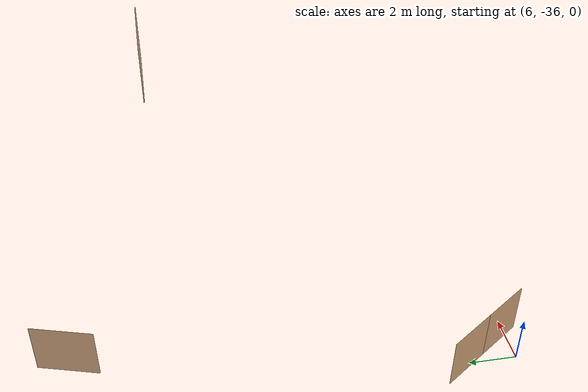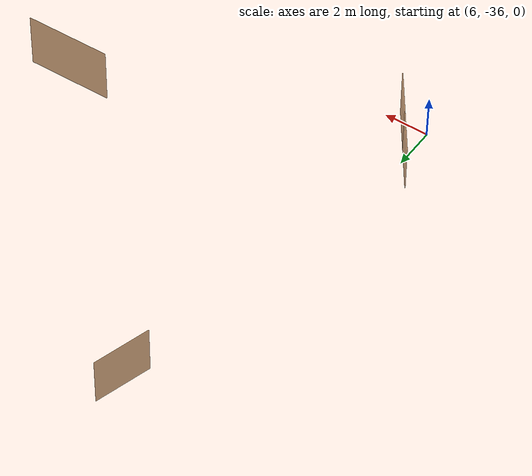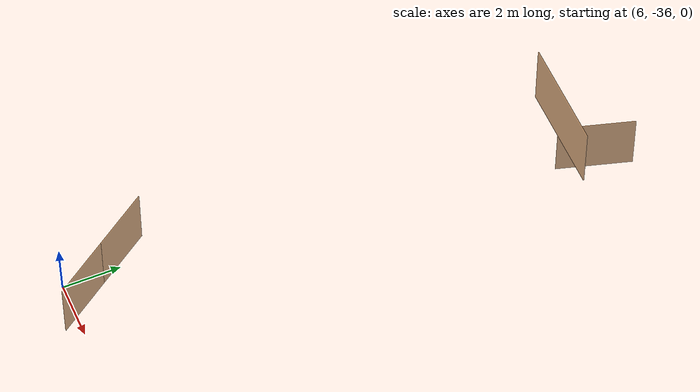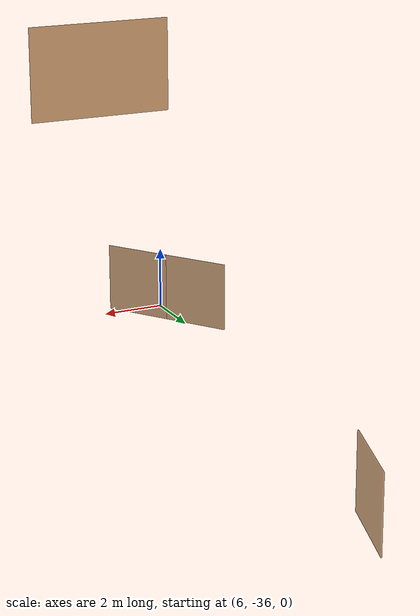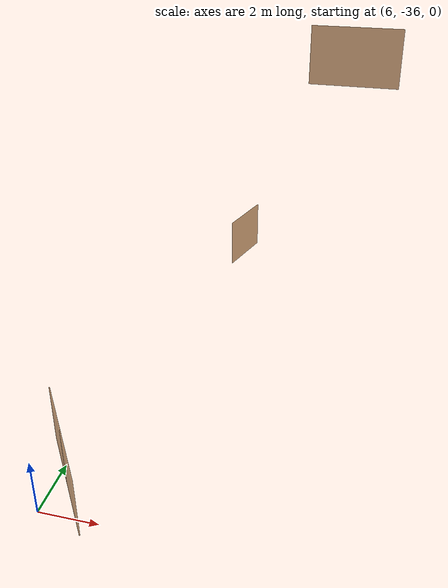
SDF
<sdf version="1.7">
 <world name="sim_world">
  <model name="entrada_empleados">
   <pose>8.35510918424723 -18.084908833209635 0.0 0 0 1.2844318970957684</pose>
   <link name="right">
    <pose>0 0 1.11 0 0 0</pose>
    <visual name="right_visual">
     <geometry><box><size>2.586671070904746 0.03 2.2</size></box></geometry>
     <material>
      <ambient>0.5 0.25 0 0.6</ambient>
      <diffuse>0.5 0.25 0 0.6</diffuse>
      <pbr><metal><metalness>0.0</metalness></metal></pbr>
     </material>
    </visual>
    <collision name="right_collision">
     <geometry><box><size>2.586671070904746 0.03 2.2</size></box></geometry>
     <surface><contact><collide_bitmask>0x02</collide_bitmask></contact></surface>
    </collision>
    <inertial>
     <mass>50.0</mass>
     <inertia><ixx>20.17041666666667</ixx><iyy>48.045280121064614</iyy><izz>27.882363454397943</izz></inertia>
    </inertial>
   </link>
   <joint name="right_joint" type="revolute">
    <parent>world</parent>
    <child>right</child>
    <axis><xyz>0 0 1</xyz><limit><lower>0</lower><upper>1.57</upper></limit></axis>
    <pose>1.298335535452373 0 0 0 0 0</pose>
   </joint>
   <plugin name="register_component" filename="libregister_component.so">
    <component name="Door">
     <v_max_door>0.5</v_max_door>
     <a_max_door>0.3</a_max_door>
     <a_nom_door>0.15</a_nom_door>
     <dx_min_door>0.01</dx_min_door>
     <f_max_door>500.0</f_max_door>
     <ros_interface>true</ros_interface>
     <door name="entrada_empleados" type="SwingDoor" left_joint_name="empty_joint" right_joint_name="right_joint"/>
    </component>
   </plugin>
  </model>
  <model name="entrada_principal">
   <pose>6.362816506470544 -34.704769051808434 0.0 0 0 2.1781339014612144</pose>
   <link name="right">
    <pose>1.0993445821795196 0 1.11 0 0 0</pose>
    <visual name="right_visual">
     <geometry><box><size>2.1886891643590394 0.03 2.2</size></box></geometry>
     <material>
      <ambient>0.5 0.25 0 0.6</ambient>
      <diffuse>0.5 0.25 0 0.6</diffuse>
      <pbr><metal><metalness>0.0</metalness></metal></pbr>
     </material>
    </visual>
    <collision name="right_collision">
     <geometry><box><size>2.1886891643590394 0.03 2.2</size></box></geometry>
     <surface><contact><collide_bitmask>0x02</collide_bitmask></contact></surface>
    </collision>
    <inertial>
     <mass>50.0</mass>
     <inertia><ixx>20.17041666666667</ixx><iyy>40.12650107576113</iyy><izz>19.963584409094455</izz></inertia>
    </inertial>
   </link>
   <joint name="right_joint" type="revolute">
    <parent>world</parent>
    <child>right</child>
    <axis><xyz>0 0 1</xyz><limit><lower>0</lower><upper>1.57</upper></limit></axis>
    <pose>1.0993445821795196 0 0 0 0 0</pose>
   </joint>
   <link name="left">
    <pose>-1.0993445821795196 0 1.11 0 0 0</pose>
    <visual name="left_visual">
     <geometry><box><size>2.1886891643590394 0.03 2.2</size></box></geometry>
     <material>
      <ambient>0.5 0.25 0 0.6</ambient>
      <diffuse>0.5 0.25 0 0.6</diffuse>
      <pbr><metal><metalness>0.0</metalness></metal></pbr>
     </material>
    </visual>
    <collision name="left_collision">
     <geometry><box><size>2.1886891643590394 0.03 2.2</size></box></geometry>
     <surface><contact><collide_bitmask>0x02</collide_bitmask></contact></surface>
    </collision>
    <inertial>
     <mass>50.0</mass>
     <inertia><ixx>20.17041666666667</ixx><iyy>40.12650107576113</iyy><izz>19.963584409094455</izz></inertia>
    </inertial>
   </link>
   <joint name="left_joint" type="revolute">
    <parent>world</parent>
    <child>left</child>
    <axis><xyz>0 0 1</xyz><limit><lower>-1.57</lower><upper>0</upper></limit></axis>
    <pose>-1.0993445821795196 0 0 0 0 0</pose>
   </joint>
   <plugin name="register_component" filename="libregister_component.so">
    <component name="Door">
     <v_max_door>0.5</v_max_door>
     <a_max_door>0.3</a_max_door>
     <a_nom_door>0.15</a_nom_door>
     <dx_min_door>0.01</dx_min_door>
     <f_max_door>500.0</f_max_door>
     <ros_interface>true</ros_interface>
     <door name="entrada_principal" type="DoubleSwingDoor" left_joint_name="left_joint" right_joint_name="right_joint"/>
    </component>
   </plugin>
  </model>
  <model name="sala_reuniones">
   <pose>13.447925655872844 -22.200953351368575 10.0 0 0 3.141332672716464</pose>
   <link name="right">
    <pose>0 0 1.11 0 0 0</pose>
    <visual name="right_visual">
     <geometry><box><size>3.409900238666375 0.03 2.2</size></box></geometry>
     <material>
      <ambient>0.5 0.25 0 0.6</ambient>
      <diffuse>0.5 0.25 0 0.6</diffuse>
      <pbr><metal><metalness>0.0</metalness></metal></pbr>
     </material>
    </visual>
    <collision name="right_collision">
     <geometry><box><size>3.409900238666375 0.03 2.2</size></box></geometry>
     <surface><contact><collide_bitmask>0x02</collide_bitmask></contact></surface>
    </collision>
    <inertial>
     <mass>50.0</mass>
     <inertia><ixx>20.17041666666667</ixx><iyy>68.61424849023751</iyy><izz>48.45133182357084</izz></inertia>
    </inertial>
   </link>
   <joint name="right_joint" type="revolute">
    <parent>world</parent>
    <child>right</child>
    <axis><xyz>0 0 1</xyz><limit><lower>0</lower><upper>1.57</upper></limit></axis>
    <pose>1.7099501193331874 0 0 0 0 0</pose>
   </joint>
   <plugin name="register_component" filename="libregister_component.so">
    <component name="Door">
     <v_max_door>0.5</v_max_door>
     <a_max_door>0.3</a_max_door>
     <a_nom_door>0.15</a_nom_door>
     <dx_min_door>0.01</dx_min_door>
     <f_max_door>500.0</f_max_door>
     <ros_interface>true</ros_interface>
     <door name="sala_reuniones" type="SwingDoor" left_joint_name="empty_joint" right_joint_name="right_joint"/>
    </component>
   </plugin>
  </model>
 </world>
</sdf>
